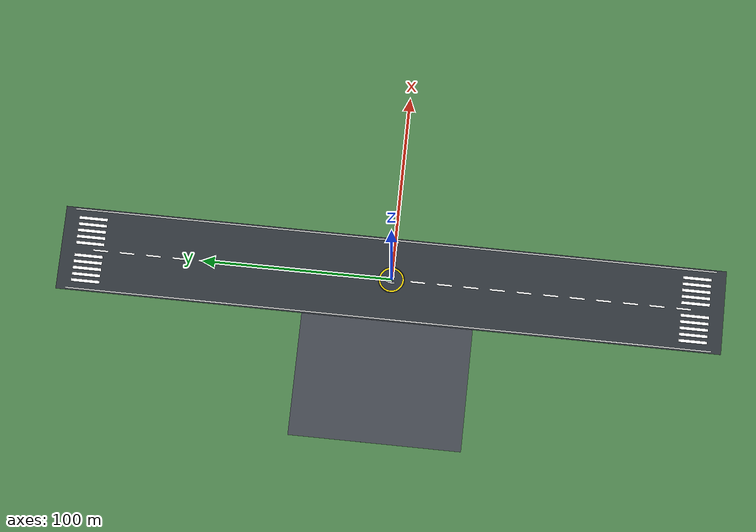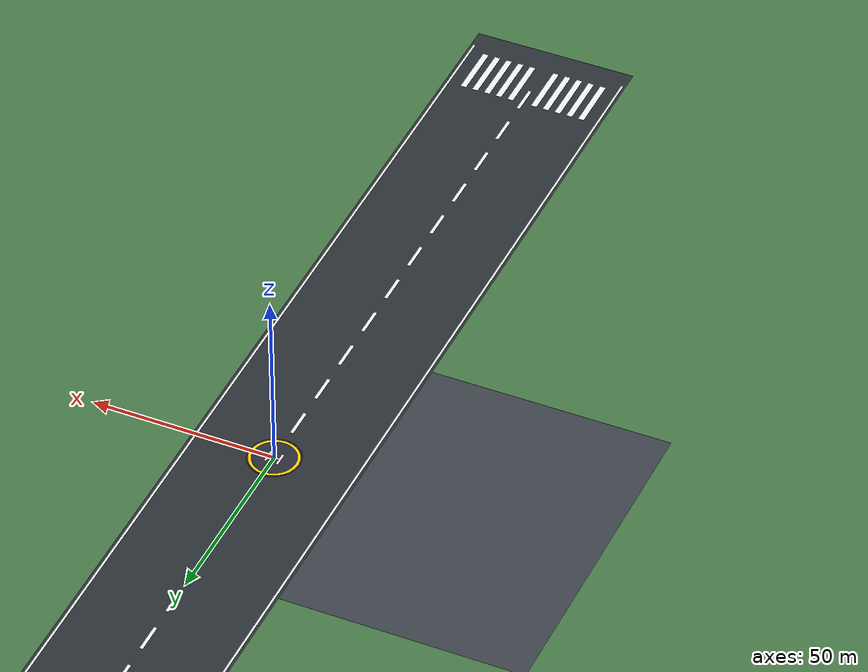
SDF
<?xml version="1.0" encoding="UTF-8"?>
<sdf version="1.9">
  <world name="default">
    <physics type="ode">
      <max_step_size>0.004</max_step_size>
      <real_time_factor>1.0</real_time_factor>
      <real_time_update_rate>250</real_time_update_rate>
    </physics>
    <gravity>0 0 -9.80665</gravity>
    <magnetic_field>6e-06 2.3e-05 -4.2e-05</magnetic_field>
    <atmosphere type="adiabatic"/>

    <scene>
      <grid>false</grid>
      <ambient>0.55 0.55 0.60 1.0</ambient>
      <background>0.65 0.78 0.92 1.0</background>
      <shadows>true</shadows>
    </scene>

    <!-- Sun Lighting -->
    <light name="sunUTC" type="directional">
      <pose>0 0 500 0 -0 0</pose>
      <cast_shadows>true</cast_shadows>
      <intensity>1.3</intensity>
      <direction>0.3 0.4 -0.85</direction>
      <diffuse>0.98 0.98 0.98 1.0</diffuse>
      <specular>0.3 0.3 0.3 1.0</specular>
      <attenuation>
        <range>2000</range>
        <constant>1</constant>
      </attenuation>
    </light>

    <!-- Airfield Green Grass Base (800m x 800m) -->
    <model name="airfield_ground">
      <static>true</static>
      <link name="link">
        <collision name="collision">
          <geometry>
            <plane>
              <normal>0 0 1</normal>
              <size>800 800</size>
            </plane>
          </geometry>
          <surface>
            <friction>
              <ode>
                <mu>100</mu>
                <mu2>50</mu2>
              </ode>
            </friction>
          </surface>
        </collision>
        <visual name="grass_visual">
          <geometry>
            <plane>
              <normal>0 0 1</normal>
              <size>800 800</size>
            </plane>
          </geometry>
          <material>
            <ambient>0.24 0.42 0.24 1.0</ambient>
            <diffuse>0.28 0.48 0.28 1.0</diffuse>
            <specular>0.05 0.05 0.05 1.0</specular>
          </material>
        </visual>
      </link>
    </model>

    <!-- Main Expansive Asphalt Runway (350m x 45m) -->
    <model name="runway_main">
      <static>true</static>
      <pose>0 0 0.003 0 0 0</pose>
      <link name="link">
        <visual name="asphalt">
          <geometry>
            <box>
              <size>45.0 350.0 0.004</size>
            </box>
          </geometry>
          <material>
            <ambient>0.13 0.15 0.17 1.0</ambient>
            <diffuse>0.17 0.19 0.21 1.0</diffuse>
          </material>
        </visual>
      </link>
    </model>

    <!-- Apron / Tarmac Zone (West of Runway: 60m x 80m) -->
    <model name="apron_tarmac">
      <static>true</static>
      <pose>-55.0 0 0.003 0 0 0</pose>
      <link name="link">
        <visual name="concrete">
          <geometry>
            <box>
              <size>65.0 90.0 0.004</size>
            </box>
          </geometry>
          <material>
            <ambient>0.20 0.22 0.25 1.0</ambient>
            <diffuse>0.24 0.26 0.29 1.0</diffuse>
          </material>
        </visual>
      </link>
    </model>

    <!-- Runway Markings: Edge Lines, Centerline & Threshold Keys -->

    <!-- Runway Left Edge Line -->
    <model name="runway_edge_left">
      <static>true</static>
      <pose>-21.5 0 0.007 0 0 0</pose>
      <link name="link">
        <visual name="vis">
          <geometry>
            <box>
              <size>0.6 340.0 0.005</size>
            </box>
          </geometry>
          <material>
            <ambient>0.95 0.95 0.95 1.0</ambient>
            <diffuse>0.95 0.95 0.95 1.0</diffuse>
          </material>
        </visual>
      </link>
    </model>

    <!-- Runway Right Edge Line -->
    <model name="runway_edge_right">
      <static>true</static>
      <pose>21.5 0 0.007 0 0 0</pose>
      <link name="link">
        <visual name="vis">
          <geometry>
            <box>
              <size>0.6 340.0 0.005</size>
            </box>
          </geometry>
          <material>
            <ambient>0.95 0.95 0.95 1.0</ambient>
            <diffuse>0.95 0.95 0.95 1.0</diffuse>
          </material>
        </visual>
      </link>
    </model>

    <!-- Runway Centerline Stripe 0 -->
    <model name="stripe_0">
      <static>true</static>
      <pose>0 -154.0 0.007 0 0 0</pose>
      <link name="link">
        <visual name="vis">
          <geometry>
            <box>
              <size>0.9 8.0 0.005</size>
            </box>
          </geometry>
          <material>
            <ambient>0.95 0.95 0.95 1.0</ambient>
            <diffuse>0.95 0.95 0.95 1.0</diffuse>
          </material>
        </visual>
      </link>
    </model>

    <!-- Runway Centerline Stripe 1 -->
    <model name="stripe_1">
      <static>true</static>
      <pose>0 -140.0 0.007 0 0 0</pose>
      <link name="link">
        <visual name="vis">
          <geometry>
            <box>
              <size>0.9 8.0 0.005</size>
            </box>
          </geometry>
          <material>
            <ambient>0.95 0.95 0.95 1.0</ambient>
            <diffuse>0.95 0.95 0.95 1.0</diffuse>
          </material>
        </visual>
      </link>
    </model>

    <!-- Runway Centerline Stripe 2 -->
    <model name="stripe_2">
      <static>true</static>
      <pose>0 -126.0 0.007 0 0 0</pose>
      <link name="link">
        <visual name="vis">
          <geometry>
            <box>
              <size>0.9 8.0 0.005</size>
            </box>
          </geometry>
          <material>
            <ambient>0.95 0.95 0.95 1.0</ambient>
            <diffuse>0.95 0.95 0.95 1.0</diffuse>
          </material>
        </visual>
      </link>
    </model>

    <!-- Runway Centerline Stripe 3 -->
    <model name="stripe_3">
      <static>true</static>
      <pose>0 -112.0 0.007 0 0 0</pose>
      <link name="link">
        <visual name="vis">
          <geometry>
            <box>
              <size>0.9 8.0 0.005</size>
            </box>
          </geometry>
          <material>
            <ambient>0.95 0.95 0.95 1.0</ambient>
            <diffuse>0.95 0.95 0.95 1.0</diffuse>
          </material>
        </visual>
      </link>
    </model>

    <!-- Runway Centerline Stripe 4 -->
    <model name="stripe_4">
      <static>true</static>
      <pose>0 -98.0 0.007 0 0 0</pose>
      <link name="link">
        <visual name="vis">
          <geometry>
            <box>
              <size>0.9 8.0 0.005</size>
            </box>
          </geometry>
          <material>
            <ambient>0.95 0.95 0.95 1.0</ambient>
            <diffuse>0.95 0.95 0.95 1.0</diffuse>
          </material>
        </visual>
      </link>
    </model>

    <!-- Runway Centerline Stripe 5 -->
    <model name="stripe_5">
      <static>true</static>
      <pose>0 -84.0 0.007 0 0 0</pose>
      <link name="link">
        <visual name="vis">
          <geometry>
            <box>
              <size>0.9 8.0 0.005</size>
            </box>
          </geometry>
          <material>
            <ambient>0.95 0.95 0.95 1.0</ambient>
            <diffuse>0.95 0.95 0.95 1.0</diffuse>
          </material>
        </visual>
      </link>
    </model>

    <!-- Runway Centerline Stripe 6 -->
    <model name="stripe_6">
      <static>true</static>
      <pose>0 -70.0 0.007 0 0 0</pose>
      <link name="link">
        <visual name="vis">
          <geometry>
            <box>
              <size>0.9 8.0 0.005</size>
            </box>
          </geometry>
          <material>
            <ambient>0.95 0.95 0.95 1.0</ambient>
            <diffuse>0.95 0.95 0.95 1.0</diffuse>
          </material>
        </visual>
      </link>
    </model>

    <!-- Runway Centerline Stripe 7 -->
    <model name="stripe_7">
      <static>true</static>
      <pose>0 -56.0 0.007 0 0 0</pose>
      <link name="link">
        <visual name="vis">
          <geometry>
            <box>
              <size>0.9 8.0 0.005</size>
            </box>
          </geometry>
          <material>
            <ambient>0.95 0.95 0.95 1.0</ambient>
            <diffuse>0.95 0.95 0.95 1.0</diffuse>
          </material>
        </visual>
      </link>
    </model>

    <!-- Runway Centerline Stripe 8 -->
    <model name="stripe_8">
      <static>true</static>
      <pose>0 -42.0 0.007 0 0 0</pose>
      <link name="link">
        <visual name="vis">
          <geometry>
            <box>
              <size>0.9 8.0 0.005</size>
            </box>
          </geometry>
          <material>
            <ambient>0.95 0.95 0.95 1.0</ambient>
            <diffuse>0.95 0.95 0.95 1.0</diffuse>
          </material>
        </visual>
      </link>
    </model>

    <!-- Runway Centerline Stripe 9 -->
    <model name="stripe_9">
      <static>true</static>
      <pose>0 -28.0 0.007 0 0 0</pose>
      <link name="link">
        <visual name="vis">
          <geometry>
            <box>
              <size>0.9 8.0 0.005</size>
            </box>
          </geometry>
          <material>
            <ambient>0.95 0.95 0.95 1.0</ambient>
            <diffuse>0.95 0.95 0.95 1.0</diffuse>
          </material>
        </visual>
      </link>
    </model>

    <!-- Runway Centerline Stripe 10 -->
    <model name="stripe_10">
      <static>true</static>
      <pose>0 -14.0 0.007 0 0 0</pose>
      <link name="link">
        <visual name="vis">
          <geometry>
            <box>
              <size>0.9 8.0 0.005</size>
            </box>
          </geometry>
          <material>
            <ambient>0.95 0.95 0.95 1.0</ambient>
            <diffuse>0.95 0.95 0.95 1.0</diffuse>
          </material>
        </visual>
      </link>
    </model>

    <!-- Runway Centerline Stripe 12 -->
    <model name="stripe_12">
      <static>true</static>
      <pose>0 14.0 0.007 0 0 0</pose>
      <link name="link">
        <visual name="vis">
          <geometry>
            <box>
              <size>0.9 8.0 0.005</size>
            </box>
          </geometry>
          <material>
            <ambient>0.95 0.95 0.95 1.0</ambient>
            <diffuse>0.95 0.95 0.95 1.0</diffuse>
          </material>
        </visual>
      </link>
    </model>

    <!-- Runway Centerline Stripe 13 -->
    <model name="stripe_13">
      <static>true</static>
      <pose>0 28.0 0.007 0 0 0</pose>
      <link name="link">
        <visual name="vis">
          <geometry>
            <box>
              <size>0.9 8.0 0.005</size>
            </box>
          </geometry>
          <material>
            <ambient>0.95 0.95 0.95 1.0</ambient>
            <diffuse>0.95 0.95 0.95 1.0</diffuse>
          </material>
        </visual>
      </link>
    </model>

    <!-- Runway Centerline Stripe 14 -->
    <model name="stripe_14">
      <static>true</static>
      <pose>0 42.0 0.007 0 0 0</pose>
      <link name="link">
        <visual name="vis">
          <geometry>
            <box>
              <size>0.9 8.0 0.005</size>
            </box>
          </geometry>
          <material>
            <ambient>0.95 0.95 0.95 1.0</ambient>
            <diffuse>0.95 0.95 0.95 1.0</diffuse>
          </material>
        </visual>
      </link>
    </model>

    <!-- Runway Centerline Stripe 15 -->
    <model name="stripe_15">
      <static>true</static>
      <pose>0 56.0 0.007 0 0 0</pose>
      <link name="link">
        <visual name="vis">
          <geometry>
            <box>
              <size>0.9 8.0 0.005</size>
            </box>
          </geometry>
          <material>
            <ambient>0.95 0.95 0.95 1.0</ambient>
            <diffuse>0.95 0.95 0.95 1.0</diffuse>
          </material>
        </visual>
      </link>
    </model>

    <!-- Runway Centerline Stripe 16 -->
    <model name="stripe_16">
      <static>true</static>
      <pose>0 70.0 0.007 0 0 0</pose>
      <link name="link">
        <visual name="vis">
          <geometry>
            <box>
              <size>0.9 8.0 0.005</size>
            </box>
          </geometry>
          <material>
            <ambient>0.95 0.95 0.95 1.0</ambient>
            <diffuse>0.95 0.95 0.95 1.0</diffuse>
          </material>
        </visual>
      </link>
    </model>

    <!-- Runway Centerline Stripe 17 -->
    <model name="stripe_17">
      <static>true</static>
      <pose>0 84.0 0.007 0 0 0</pose>
      <link name="link">
        <visual name="vis">
          <geometry>
            <box>
              <size>0.9 8.0 0.005</size>
            </box>
          </geometry>
          <material>
            <ambient>0.95 0.95 0.95 1.0</ambient>
            <diffuse>0.95 0.95 0.95 1.0</diffuse>
          </material>
        </visual>
      </link>
    </model>

    <!-- Runway Centerline Stripe 18 -->
    <model name="stripe_18">
      <static>true</static>
      <pose>0 98.0 0.007 0 0 0</pose>
      <link name="link">
        <visual name="vis">
          <geometry>
            <box>
              <size>0.9 8.0 0.005</size>
            </box>
          </geometry>
          <material>
            <ambient>0.95 0.95 0.95 1.0</ambient>
            <diffuse>0.95 0.95 0.95 1.0</diffuse>
          </material>
        </visual>
      </link>
    </model>

    <!-- Runway Centerline Stripe 19 -->
    <model name="stripe_19">
      <static>true</static>
      <pose>0 112.0 0.007 0 0 0</pose>
      <link name="link">
        <visual name="vis">
          <geometry>
            <box>
              <size>0.9 8.0 0.005</size>
            </box>
          </geometry>
          <material>
            <ambient>0.95 0.95 0.95 1.0</ambient>
            <diffuse>0.95 0.95 0.95 1.0</diffuse>
          </material>
        </visual>
      </link>
    </model>

    <!-- Runway Centerline Stripe 20 -->
    <model name="stripe_20">
      <static>true</static>
      <pose>0 126.0 0.007 0 0 0</pose>
      <link name="link">
        <visual name="vis">
          <geometry>
            <box>
              <size>0.9 8.0 0.005</size>
            </box>
          </geometry>
          <material>
            <ambient>0.95 0.95 0.95 1.0</ambient>
            <diffuse>0.95 0.95 0.95 1.0</diffuse>
          </material>
        </visual>
      </link>
    </model>

    <!-- Runway Centerline Stripe 21 -->
    <model name="stripe_21">
      <static>true</static>
      <pose>0 140.0 0.007 0 0 0</pose>
      <link name="link">
        <visual name="vis">
          <geometry>
            <box>
              <size>0.9 8.0 0.005</size>
            </box>
          </geometry>
          <material>
            <ambient>0.95 0.95 0.95 1.0</ambient>
            <diffuse>0.95 0.95 0.95 1.0</diffuse>
          </material>
        </visual>
      </link>
    </model>

    <!-- Runway Centerline Stripe 22 -->
    <model name="stripe_22">
      <static>true</static>
      <pose>0 154.0 0.007 0 0 0</pose>
      <link name="link">
        <visual name="vis">
          <geometry>
            <box>
              <size>0.9 8.0 0.005</size>
            </box>
          </geometry>
          <material>
            <ambient>0.95 0.95 0.95 1.0</ambient>
            <diffuse>0.95 0.95 0.95 1.0</diffuse>
          </material>
        </visual>
      </link>
    </model>

    <!-- Threshold Key south_-5 -->
    <model name="thresh_south_0">
      <static>true</static>
      <pose>-17.0 -160.0 0.007 0 0 0</pose>
      <link name="link">
        <visual name="vis">
          <geometry>
            <box>
              <size>1.6 15.0 0.005</size>
            </box>
          </geometry>
          <material>
            <ambient>0.95 0.95 0.95 1.0</ambient>
            <diffuse>0.95 0.95 0.95 1.0</diffuse>
          </material>
        </visual>
      </link>
    </model>

    <!-- Threshold Key south_-4 -->
    <model name="thresh_south_1">
      <static>true</static>
      <pose>-13.6 -160.0 0.007 0 0 0</pose>
      <link name="link">
        <visual name="vis">
          <geometry>
            <box>
              <size>1.6 15.0 0.005</size>
            </box>
          </geometry>
          <material>
            <ambient>0.95 0.95 0.95 1.0</ambient>
            <diffuse>0.95 0.95 0.95 1.0</diffuse>
          </material>
        </visual>
      </link>
    </model>

    <!-- Threshold Key south_-3 -->
    <model name="thresh_south_2">
      <static>true</static>
      <pose>-10.2 -160.0 0.007 0 0 0</pose>
      <link name="link">
        <visual name="vis">
          <geometry>
            <box>
              <size>1.6 15.0 0.005</size>
            </box>
          </geometry>
          <material>
            <ambient>0.95 0.95 0.95 1.0</ambient>
            <diffuse>0.95 0.95 0.95 1.0</diffuse>
          </material>
        </visual>
      </link>
    </model>

    <!-- Threshold Key south_-2 -->
    <model name="thresh_south_3">
      <static>true</static>
      <pose>-6.8 -160.0 0.007 0 0 0</pose>
      <link name="link">
        <visual name="vis">
          <geometry>
            <box>
              <size>1.6 15.0 0.005</size>
            </box>
          </geometry>
          <material>
            <ambient>0.95 0.95 0.95 1.0</ambient>
            <diffuse>0.95 0.95 0.95 1.0</diffuse>
          </material>
        </visual>
      </link>
    </model>

    <!-- Threshold Key south_-1 -->
    <model name="thresh_south_4">
      <static>true</static>
      <pose>-3.4 -160.0 0.007 0 0 0</pose>
      <link name="link">
        <visual name="vis">
          <geometry>
            <box>
              <size>1.6 15.0 0.005</size>
            </box>
          </geometry>
          <material>
            <ambient>0.95 0.95 0.95 1.0</ambient>
            <diffuse>0.95 0.95 0.95 1.0</diffuse>
          </material>
        </visual>
      </link>
    </model>

    <!-- Threshold Key south_1 -->
    <model name="thresh_south_6">
      <static>true</static>
      <pose>3.4 -160.0 0.007 0 0 0</pose>
      <link name="link">
        <visual name="vis">
          <geometry>
            <box>
              <size>1.6 15.0 0.005</size>
            </box>
          </geometry>
          <material>
            <ambient>0.95 0.95 0.95 1.0</ambient>
            <diffuse>0.95 0.95 0.95 1.0</diffuse>
          </material>
        </visual>
      </link>
    </model>

    <!-- Threshold Key south_2 -->
    <model name="thresh_south_7">
      <static>true</static>
      <pose>6.8 -160.0 0.007 0 0 0</pose>
      <link name="link">
        <visual name="vis">
          <geometry>
            <box>
              <size>1.6 15.0 0.005</size>
            </box>
          </geometry>
          <material>
            <ambient>0.95 0.95 0.95 1.0</ambient>
            <diffuse>0.95 0.95 0.95 1.0</diffuse>
          </material>
        </visual>
      </link>
    </model>

    <!-- Threshold Key south_3 -->
    <model name="thresh_south_8">
      <static>true</static>
      <pose>10.2 -160.0 0.007 0 0 0</pose>
      <link name="link">
        <visual name="vis">
          <geometry>
            <box>
              <size>1.6 15.0 0.005</size>
            </box>
          </geometry>
          <material>
            <ambient>0.95 0.95 0.95 1.0</ambient>
            <diffuse>0.95 0.95 0.95 1.0</diffuse>
          </material>
        </visual>
      </link>
    </model>

    <!-- Threshold Key south_4 -->
    <model name="thresh_south_9">
      <static>true</static>
      <pose>13.6 -160.0 0.007 0 0 0</pose>
      <link name="link">
        <visual name="vis">
          <geometry>
            <box>
              <size>1.6 15.0 0.005</size>
            </box>
          </geometry>
          <material>
            <ambient>0.95 0.95 0.95 1.0</ambient>
            <diffuse>0.95 0.95 0.95 1.0</diffuse>
          </material>
        </visual>
      </link>
    </model>

    <!-- Threshold Key south_5 -->
    <model name="thresh_south_10">
      <static>true</static>
      <pose>17.0 -160.0 0.007 0 0 0</pose>
      <link name="link">
        <visual name="vis">
          <geometry>
            <box>
              <size>1.6 15.0 0.005</size>
            </box>
          </geometry>
          <material>
            <ambient>0.95 0.95 0.95 1.0</ambient>
            <diffuse>0.95 0.95 0.95 1.0</diffuse>
          </material>
        </visual>
      </link>
    </model>

    <!-- Threshold Key north_-5 -->
    <model name="thresh_north_0">
      <static>true</static>
      <pose>-17.0 160.0 0.007 0 0 0</pose>
      <link name="link">
        <visual name="vis">
          <geometry>
            <box>
              <size>1.6 15.0 0.005</size>
            </box>
          </geometry>
          <material>
            <ambient>0.95 0.95 0.95 1.0</ambient>
            <diffuse>0.95 0.95 0.95 1.0</diffuse>
          </material>
        </visual>
      </link>
    </model>

    <!-- Threshold Key north_-4 -->
    <model name="thresh_north_1">
      <static>true</static>
      <pose>-13.6 160.0 0.007 0 0 0</pose>
      <link name="link">
        <visual name="vis">
          <geometry>
            <box>
              <size>1.6 15.0 0.005</size>
            </box>
          </geometry>
          <material>
            <ambient>0.95 0.95 0.95 1.0</ambient>
            <diffuse>0.95 0.95 0.95 1.0</diffuse>
          </material>
        </visual>
      </link>
    </model>

    <!-- Threshold Key north_-3 -->
    <model name="thresh_north_2">
      <static>true</static>
      <pose>-10.2 160.0 0.007 0 0 0</pose>
      <link name="link">
        <visual name="vis">
          <geometry>
            <box>
              <size>1.6 15.0 0.005</size>
            </box>
          </geometry>
          <material>
            <ambient>0.95 0.95 0.95 1.0</ambient>
            <diffuse>0.95 0.95 0.95 1.0</diffuse>
          </material>
        </visual>
      </link>
    </model>

    <!-- Threshold Key north_-2 -->
    <model name="thresh_north_3">
      <static>true</static>
      <pose>-6.8 160.0 0.007 0 0 0</pose>
      <link name="link">
        <visual name="vis">
          <geometry>
            <box>
              <size>1.6 15.0 0.005</size>
            </box>
          </geometry>
          <material>
            <ambient>0.95 0.95 0.95 1.0</ambient>
            <diffuse>0.95 0.95 0.95 1.0</diffuse>
          </material>
        </visual>
      </link>
    </model>

    <!-- Threshold Key north_-1 -->
    <model name="thresh_north_4">
      <static>true</static>
      <pose>-3.4 160.0 0.007 0 0 0</pose>
      <link name="link">
        <visual name="vis">
          <geometry>
            <box>
              <size>1.6 15.0 0.005</size>
            </box>
          </geometry>
          <material>
            <ambient>0.95 0.95 0.95 1.0</ambient>
            <diffuse>0.95 0.95 0.95 1.0</diffuse>
          </material>
        </visual>
      </link>
    </model>

    <!-- Threshold Key north_1 -->
    <model name="thresh_north_6">
      <static>true</static>
      <pose>3.4 160.0 0.007 0 0 0</pose>
      <link name="link">
        <visual name="vis">
          <geometry>
            <box>
              <size>1.6 15.0 0.005</size>
            </box>
          </geometry>
          <material>
            <ambient>0.95 0.95 0.95 1.0</ambient>
            <diffuse>0.95 0.95 0.95 1.0</diffuse>
          </material>
        </visual>
      </link>
    </model>

    <!-- Threshold Key north_2 -->
    <model name="thresh_north_7">
      <static>true</static>
      <pose>6.8 160.0 0.007 0 0 0</pose>
      <link name="link">
        <visual name="vis">
          <geometry>
            <box>
              <size>1.6 15.0 0.005</size>
            </box>
          </geometry>
          <material>
            <ambient>0.95 0.95 0.95 1.0</ambient>
            <diffuse>0.95 0.95 0.95 1.0</diffuse>
          </material>
        </visual>
      </link>
    </model>

    <!-- Threshold Key north_3 -->
    <model name="thresh_north_8">
      <static>true</static>
      <pose>10.2 160.0 0.007 0 0 0</pose>
      <link name="link">
        <visual name="vis">
          <geometry>
            <box>
              <size>1.6 15.0 0.005</size>
            </box>
          </geometry>
          <material>
            <ambient>0.95 0.95 0.95 1.0</ambient>
            <diffuse>0.95 0.95 0.95 1.0</diffuse>
          </material>
        </visual>
      </link>
    </model>

    <!-- Threshold Key north_4 -->
    <model name="thresh_north_9">
      <static>true</static>
      <pose>13.6 160.0 0.007 0 0 0</pose>
      <link name="link">
        <visual name="vis">
          <geometry>
            <box>
              <size>1.6 15.0 0.005</size>
            </box>
          </geometry>
          <material>
            <ambient>0.95 0.95 0.95 1.0</ambient>
            <diffuse>0.95 0.95 0.95 1.0</diffuse>
          </material>
        </visual>
      </link>
    </model>

    <!-- Threshold Key north_5 -->
    <model name="thresh_north_10">
      <static>true</static>
      <pose>17.0 160.0 0.007 0 0 0</pose>
      <link name="link">
        <visual name="vis">
          <geometry>
            <box>
              <size>1.6 15.0 0.005</size>
            </box>
          </geometry>
          <material>
            <ambient>0.95 0.95 0.95 1.0</ambient>
            <diffuse>0.95 0.95 0.95 1.0</diffuse>
          </material>
        </visual>
      </link>
    </model>

    <!-- Grand High-Visibility Takeoff & Landing Helipad (H-Pad) at Center (0,0) -->
    <model name="helipad_h">
      <static>true</static>
      <pose>0 0 0.005 0 0 0</pose>
      <link name="helipad_link">
        <!-- Base Dark Octagon Disc -->
        <visual name="pad_base">
          <geometry>
            <cylinder>
              <radius>7.0</radius>
              <length>0.008</length>
            </cylinder>
          </geometry>
          <material>
            <ambient>0.10 0.12 0.15 1.0</ambient>
            <diffuse>0.14 0.16 0.19 1.0</diffuse>
          </material>
        </visual>
        <!-- Outer Glowing Yellow Border Ring -->
        <visual name="outer_yellow_ring">
          <pose>0 0 0.002 0 0 0</pose>
          <geometry>
            <cylinder>
              <radius>6.6</radius>
              <length>0.01</length>
            </cylinder>
          </geometry>
          <material>
            <ambient>0.95 0.75 0.0 1.0</ambient>
            <diffuse>1.0 0.82 0.0 1.0</diffuse>
          </material>
        </visual>
        <!-- Inner Landing Pad Surface -->
        <visual name="inner_surface">
          <pose>0 0 0.004 0 0 0</pose>
          <geometry>
            <cylinder>
              <radius>5.8</radius>
              <length>0.01</length>
            </cylinder>
          </geometry>
          <material>
            <ambient>0.12 0.14 0.17 1.0</ambient>
            <diffuse>0.16 0.18 0.22 1.0</diffuse>
          </material>
        </visual>
        <!-- White 'H' Left Bar (North-South) -->
        <visual name="h_left">
          <pose>-1.6 0 0.008 0 0 0</pose>
          <geometry>
            <box>
              <size>0.6 3.8 0.01</size>
            </box>
          </geometry>
          <material>
            <ambient>1.0 1.0 1.0 1.0</ambient>
            <diffuse>1.0 1.0 1.0 1.0</diffuse>
          </material>
        </visual>
        <!-- White 'H' Right Bar (North-South) -->
        <visual name="h_right">
          <pose>1.6 0 0.008 0 0 0</pose>
          <geometry>
            <box>
              <size>0.6 3.8 0.01</size>
            </box>
          </geometry>
          <material>
            <ambient>1.0 1.0 1.0 1.0</ambient>
            <diffuse>1.0 1.0 1.0 1.0</diffuse>
          </material>
        </visual>
        <!-- White 'H' Crossbar (East-West) -->
        <visual name="h_mid">
          <pose>0 0 0.008 0 0 0</pose>
          <geometry>
            <box>
              <size>2.6 0.6 0.01</size>
            </box>
          </geometry>
          <material>
            <ambient>1.0 1.0 1.0 1.0</ambient>
            <diffuse>1.0 1.0 1.0 1.0</diffuse>
          </material>
        </visual>
      </link>
    </model>

    <!-- Geographic Origin (Hanoi Coordinates) -->
    <spherical_coordinates>
      <surface_model>EARTH_WGS84</surface_model>
      <world_frame_orientation>ENU</world_frame_orientation>
      <latitude_deg>21.028511</latitude_deg>
      <longitude_deg>105.804817</longitude_deg>
      <elevation>0.0</elevation>
    </spherical_coordinates>

  </world>
</sdf>
